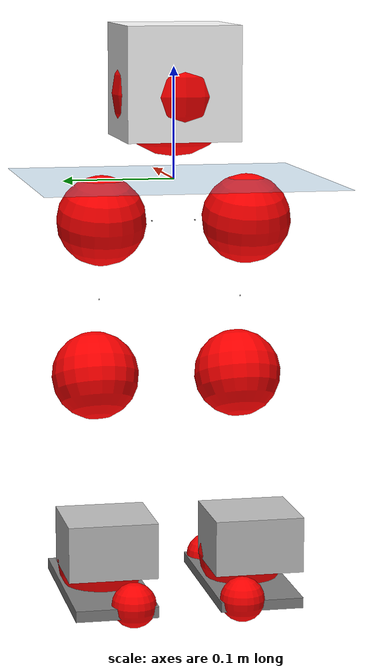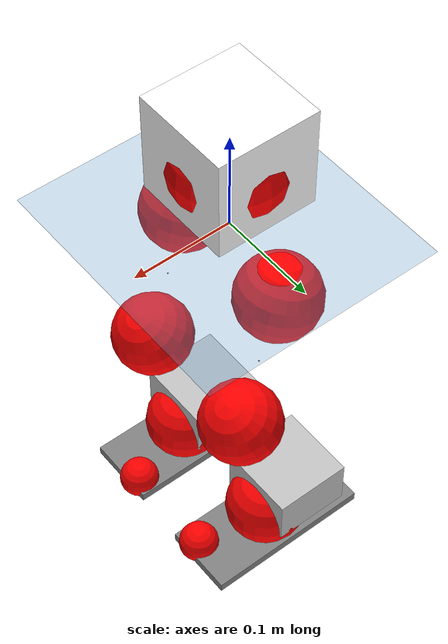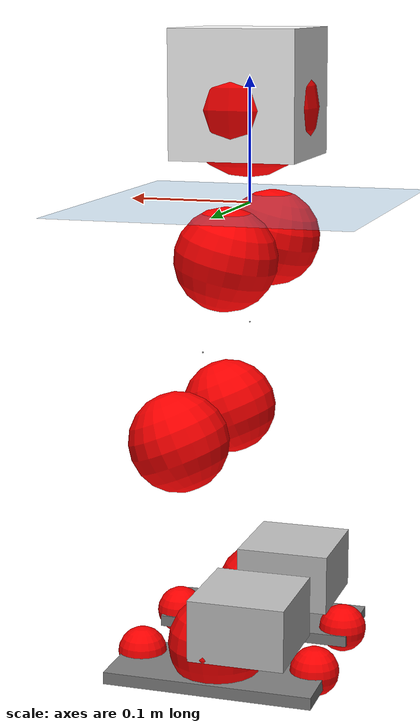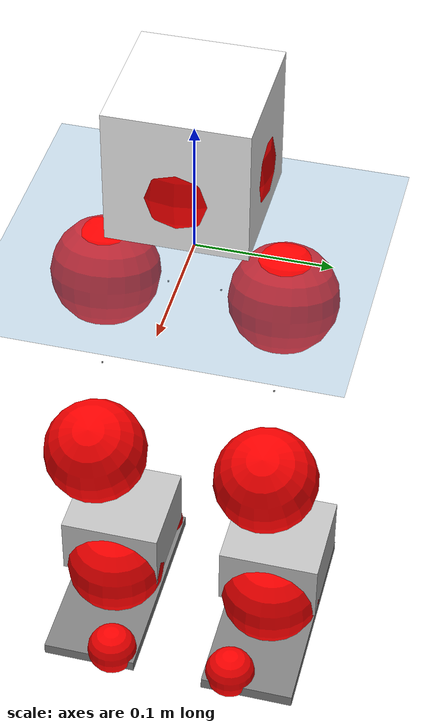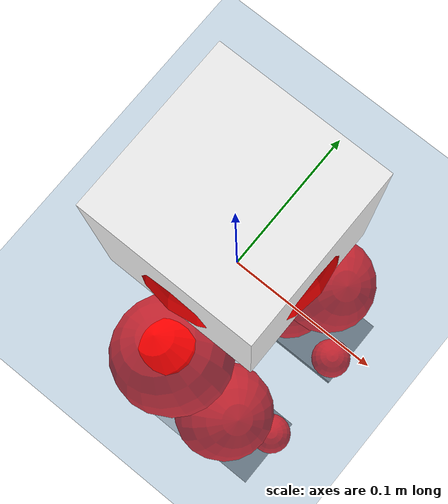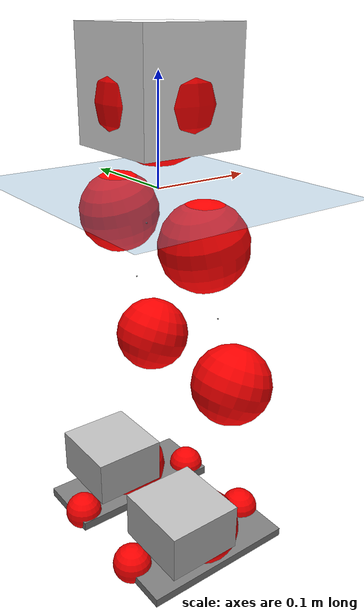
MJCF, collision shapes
<mujoco model="pi_12dof_release_v1">
  <compiler angle="radian" assetdir="assets" balanceinertia="true" inertiafromgeom="false"/>

  <option timestep="0.005" density="1.2" viscosity="2e-05"/>

  <size nkey="1"/>

  <visual>
    <quality shadowsize="8192"/>
    <map shadowclip="0.5"/>
  </visual>

  <default>
    <default class="/">
      <joint armature="0.01" damping="0.01" frictionloss="0.01"/>
      <geom contype="0" conaffinity="0" group="1" solref="-1000 -80"/>
      <site size="0.01 0.005 0.005" group="5"/>
      <general forcelimited="true" biastype="affine" gainprm="20" biasprm="0 -20 -0.5"/>
      <default class="foot">
        <geom size="0.0845 0.036 0.005" type="box" condim="6" group="4" priority="1" friction="0.9 0.2 0.2" solimp="0.015 1 0.005"/>
      </default>
      <default class="reward_collision_sphere">
        <geom group="5" rgba="1 0 0 1"/>
      </default>
    </default>
  </default>

  <asset>
    <texture type="skybox" colorspace="auto" name="//unnamed_texture_0" builtin="gradient" rgb1="0.95 0.95 0.95" rgb2="0.95 0.95 0.95" width="100" height="600"/>
    <texture type="2d" colorspace="auto" name="texplane" builtin="checker" rgb1="0.345 0.575 0.748" rgb2="0.345 0.575 0.748" markrgb="1 1 1" width="512" height="512"/>
    <material name="MatPlane" class="/" texture="texplane" texuniform="true" texrepeat="2 2" specular="0.9"/>
    <mesh name="baselink_1" class="/" file="baselink_1.STL"/>
    <mesh name="r_hip_pitch_link" class="/" file="r_hip_pitch_link.STL"/>
    <mesh name="r_hip_roll_link" class="/" file="r_hip_roll_link.STL"/>
    <mesh name="r_thigh_link" class="/" file="r_thigh_link.STL"/>
    <mesh name="r_calf_link" class="/" file="r_calf_link.STL"/>
    <mesh name="r_ankle_pitch_link" class="/" file="r_ankle_pitch_link.STL"/>
    <mesh name="r_ankle_roll_link" class="/" file="r_ankle_roll_link.STL"/>
    <mesh name="l_hip_pitch_link" class="/" file="l_hip_pitch_link.STL"/>
    <mesh name="l_hip_roll_link" class="/" file="l_hip_roll_link.STL"/>
    <mesh name="l_thigh_link" class="/" file="l_thigh_link.STL"/>
    <mesh name="l_calf_link" class="/" file="l_calf_link.STL"/>
    <mesh name="l_ankle_pitch_link" class="/" file="l_ankle_pitch_link.STL"/>
    <mesh name="l_ankle_roll_link" class="/" file="l_ankle_roll_link.STL"/>
  </asset>

  <worldbody>
    <geom name="floor" class="/" size="100 100 0.125" type="plane" group="0" material="MatPlane"/>
    <light name="toplight_shadow" class="/" pos="0 0 5" dir="0.0990148 0.0990148 -0.990148" type="directional" ambient="0.04 0.04 0.04" diffuse="0.55 0.55 0.55" specular="0.12 0.12 0.12"/>
    <light name="toplight_fill" class="/" pos="0 0 5" dir="0.0990148 0.0990148 -0.990148" type="directional" castshadow="false" ambient="0.04 0.04 0.04" diffuse="0.3 0.3 0.3" specular="0.08 0.08 0.08"/>
    <body name="trunk" pos="0.000469628 0.000207984 -0.00135928" quat="1 0.000439431 -5.22653e-05 0.000206263">
      <inertial pos="0.00321894 -0.000718127 0.0441871" quat="0.693296 0.00926779 0.00647583 0.720564" mass="2.27733" diaginertia="0.0154934 0.00364863 0.00694505"/>
      <joint name="//unnamed_joint_0" type="free"/>
      <geom name="//unnamed_geom_1" class="/" type="mesh" density="0" rgba="1 1 1 1" mesh="baselink_1"/>
      <geom name="//unnamed_geom_2" class="/" size="0.0504947 0.0504947 0.0504947" pos="0 0 0.0883509" type="box" rgba="1 1 1 1"/>
      <geom name="//unnamed_geom_3" class="reward_collision_sphere" size="0.0555442" pos="0 0 0.077307"/>
      <site name="imu" class="/" pos="0.00209953 -0.00428504 0.000194118" size="0.0100989"/>
      <camera name="track" class="/" pos="0 -1.66418 0" quat="0.707107 0.707107 0 0" mode="trackcom"/>
      <camera name="ego_camera" class="/" pos="0.0819904 0 0.198789" quat="-0.5 -0.5 0.5 0.5"/>
      <body name="r_hip_pitch_link" pos="0.000102595 -0.0195049 -0.0359752" quat="0.992196 -7.64305e-06 -0.12469 1.02299e-05">
        <inertial pos="0.000701736 -0.0462439 -0.000801627" quat="-0.0206423 0.704654 -0.0225413 0.708892" mass="0.385007" diaginertia="0.000170754 3.96553e-05 0.000138038"/>
        <joint name="r_hip_pitch_joint" class="/" pos="0 0 0" axis="-0.000436159 -0.999999 0.00165635" stiffness="4.46581e-05" range="-1.74447 1.2518" armature="0.0102168" damping="0.0143265" frictionloss="0.0103583"/>
        <geom name="//unnamed_geom_4" class="/" type="mesh" density="0" rgba="0.75294 0.75294 0.75294 1" mesh="r_hip_pitch_link"/>
        <geom name="//unnamed_geom_5" class="/" size="0.000504947 0.000504947 0.000504947" type="box" rgba="0.75294 0.75294 0.75294 1"/>
        <body name="r_hip_roll_link" pos="-0.00049289 -0.0470525 0.000483053" quat="1 0.000135817 -8.21517e-05 -0.000147021">
          <inertial pos="-0.000773651 -0.000150809 -0.067683" quat="0.706122 -0.0772963 -0.0834813 0.69889" mass="0.398473" diaginertia="0.000520712 0.000110255 0.000209339"/>
          <joint name="r_hip_roll_joint" class="/" pos="0 0 0" axis="-0.999998 -0.0018491 0.000535541" range="-0.123657 0.498568" armature="0.00928668" damping="0.0092116" frictionloss="0.00969597"/>
          <geom name="//unnamed_geom_6" class="/" type="mesh" density="0" rgba="0.75294 0.75294 0.75294 1" mesh="r_hip_roll_link"/>
          <geom name="//unnamed_geom_7" class="/" size="0.000504947 0.000504947 0.000504947" type="box" rgba="0.75294 0.75294 0.75294 1"/>
          <geom name="//unnamed_geom_8" class="reward_collision_sphere" size="0.0403958"/>
          <body name="r_thigh_link" pos="0.000759583 0.000522736 -0.0760842" quat="1 -0.000111034 -0.000228301 5.44167e-05">
            <inertial pos="-0.00121692 -0.000303426 -0.0521004" quat="0.736683 0.676237 0.000700175 -0.000757511" mass="0.116817" diaginertia="0.000193762 3.80422e-05 9.52811e-05"/>
            <joint name="r_thigh_joint" class="/" pos="0 0 0" axis="1.58915e-05 2.73522e-05 -1" range="-0.282548 0.598519" armature="0.00938805" damping="0.0022143" frictionloss="0.0098463"/>
            <geom name="//unnamed_geom_9" class="/" type="mesh" density="0" rgba="0.75294 0.75294 0.75294 1" mesh="r_thigh_link"/>
            <geom name="//unnamed_geom_10" class="/" size="0.000504947 0.000504947 0.000504947" type="box" rgba="0.75294 0.75294 0.75294 1"/>
            <body name="r_calf_link" pos="-0.000252165 -0.00221193 -0.0781118" quat="0.947876 -0.000327766 0.318639 -0.000127603">
              <inertial pos="0.000649019 -0.000813928 -0.0768059" quat="0.999954 0.0024245 0.000284093 0.00928631" mass="0.857066" diaginertia="0.00555608 0.00140589 0.000289921"/>
              <joint name="r_calf_joint" class="/" pos="0 0 0" axis="-0.00032619 -0.999997 -0.00243196" range="-1.65436 0.629264" armature="0.0101387" damping="0.00678801" frictionloss="0.0101892"/>
              <geom name="//unnamed_geom_11" class="/" type="mesh" density="0" rgba="0.75294 0.75294 0.75294 1" mesh="r_calf_link"/>
              <geom name="//unnamed_geom_12" class="/" size="0.000504947 0.000504947 0.000504947" type="box" rgba="0.75294 0.75294 0.75294 1"/>
              <geom name="//unnamed_geom_13" class="reward_collision_sphere" size="0.0403958"/>
              <body name="r_ankle_pitch_link" pos="-0.000108526 0.000817648 -0.152944" quat="0.980027 0.000143575 -0.198866 -0.000274428">
                <inertial pos="0.0062315 0.00320604 0.000330076" quat="0.00282382 0.70698 -0.00160089 0.707226" mass="0.180956" diaginertia="0.000478478 8.83295e-05 0.000194594"/>
                <joint name="r_ankle_pitch_joint" class="/" pos="0 0 0" axis="0.00497215 -0.999986 -0.00201685" stiffness="0.000284118" range="-1.27945 0.501201" armature="0.0104805" damping="0.0176331" frictionloss="0.010361"/>
                <geom name="//unnamed_geom_14" class="/" type="mesh" density="0" rgba="0.75294 0.75294 0.75294 1" mesh="r_ankle_pitch_link"/>
                <geom name="//unnamed_geom_15" class="/" size="0.0393859 0.0403958 0.0252474" type="box" rgba="0.75294 0.75294 0.75294 1"/>
                <body name="r_ankle_roll_link" pos="0.0822001 0.00169272 9.12625e-05" quat="1 2.82549e-05 0.00011496 1.18147e-06">
                  <inertial pos="-0.0256111 -0.000677391 -0.0161818" quat="0.560113 0.432848 0.427281 0.562447" mass="0.524878" diaginertia="0.00175011 0.000409723 0.000464329"/>
                  <joint name="r_ankle_roll_joint" class="/" pos="0 0 0" axis="-1 6.05242e-05 1.17572e-05" range="-0.183656 0.13474" armature="0.00983677" damping="0.0129668" frictionloss="0.00958047"/>
                  <geom name="//unnamed_geom_16" class="/" type="mesh" density="0" rgba="0.75294 0.75294 0.75294 1" mesh="r_ankle_roll_link"/>
                  <geom name="//unnamed_geom_17" class="/" type="mesh" rgba="0.75294 0.75294 0.75294 1" mesh="r_ankle_roll_link"/>
                  <geom name="right_foot" class="foot" size="0.0832589 0.0376125 0.00468542" pos="-0.0557534 0 -0.048593"/>
                  <geom name="//unnamed_geom_19" class="reward_collision_sphere" size="0.0403958" pos="-0.0546602 0 -0.0220877"/>
                  <geom name="//unnamed_geom_20" class="reward_collision_sphere" size="0.0201979" pos="0.0163981 0.0166418 -0.0441754"/>
                  <geom name="//unnamed_geom_21" class="reward_collision_sphere" size="0.0201979" pos="-0.131185 0.0166418 -0.0441754"/>
                  <site name="right_foot" class="foot" pos="-0.0557534 0 -0.048593" size="0.0100989"/>
                </body>
              </body>
            </body>
          </body>
        </body>
      </body>
      <body name="l_hip_pitch_link" pos="-4.52468e-05 0.0197583 -0.0359747" quat="0.992207 -9.75969e-05 -0.124599 1.86699e-05">
        <inertial pos="0.00188017 0.0437886 -0.00183312" quat="-0.0391948 0.703452 0.0321032 0.708935" mass="0.403862" diaginertia="0.000204997 4.19491e-05 0.000167468"/>
        <joint name="l_hip_pitch_joint" class="/" pos="0 0 0" axis="-0.00143591 0.999994 0.00318758" range="-1.27252 1.77134" armature="0.0101348" damping="0.00253494" frictionloss="0.00962125"/>
        <geom name="//unnamed_geom_22" class="/" type="mesh" density="0" rgba="0.75294 0.75294 0.75294 1" mesh="l_hip_pitch_link"/>
        <geom name="//unnamed_geom_23" class="/" size="0.000504947 0.000504947 0.000504947" type="box" rgba="0.75294 0.75294 0.75294 1"/>
        <body name="l_hip_roll_link" pos="-0.000753185 0.0459443 0.00154422" quat="1 -0.000138242 -0.000149637 1.11248e-06">
          <inertial pos="0.000311914 0.000126923 -0.0692368" quat="0.699283 -0.0752986 -0.0782197 0.706552" mass="0.410239" diaginertia="0.000538231 0.000113884 0.000214378"/>
          <joint name="l_hip_roll_joint" class="/" pos="0 0 0" axis="-1 -0.00026734 0.000756201" range="-0.501934 0.134058" armature="0.0102252" damping="0.00183277" frictionloss="0.0100734"/>
          <geom name="//unnamed_geom_24" class="/" type="mesh" density="0" rgba="0.75294 0.75294 0.75294 1" mesh="l_hip_roll_link"/>
          <geom name="//unnamed_geom_25" class="/" size="0.000504947 0.000504947 0.000504947" type="box" rgba="0.75294 0.75294 0.75294 1"/>
          <geom name="//unnamed_geom_26" class="reward_collision_sphere" size="0.0403958"/>
          <body name="l_thigh_link" pos="0.000288637 -0.000701479 -0.0764858" quat="1 -2.19791e-05 2.67315e-05 4.39875e-05">
            <inertial pos="-0.000778957 -0.00220549 -0.0542565" quat="0.678231 0.734848 0.000730118 -0.000464812" mass="0.116303" diaginertia="0.000195726 3.84007e-05 9.4559e-05"/>
            <joint name="l_thigh_joint" class="/" pos="0 0 0" axis="-0.000295957 -0.000308185 -1" range="-0.594022 0.285346" armature="0.00997332" damping="0.0112328" frictionloss="0.0108532"/>
            <geom name="//unnamed_geom_27" class="/" type="mesh" density="0" rgba="0.75294 0.75294 0.75294 1" mesh="l_thigh_link"/>
            <geom name="//unnamed_geom_28" class="/" size="0.000504947 0.000504947 0.000504947" type="box" rgba="0.75294 0.75294 0.75294 1"/>
            <body name="l_calf_link" pos="0.00131621 0.000575816 -0.0766317" quat="0.947644 4.27356e-05 0.319328 2.46588e-05">
              <inertial pos="0.000591709 0.0034189 -0.076903" quat="0.99998 0.00116168 -0.00400971 0.00468699" mass="0.833711" diaginertia="0.00566785 0.00141572 0.0002882"/>
              <joint name="l_calf_joint" class="/" pos="0 0 0" axis="-0.00445437 0.999989 -0.00150473" range="-0.660365 1.67114" armature="0.0101247" damping="0.0106971" frictionloss="0.00975989"/>
              <geom name="//unnamed_geom_29" class="/" type="mesh" density="0" rgba="0.75294 0.75294 0.75294 1" mesh="l_calf_link"/>
              <geom name="//unnamed_geom_30" class="/" size="0.000504947 0.000504947 0.000504947" type="box" rgba="0.75294 0.75294 0.75294 1"/>
              <geom name="//unnamed_geom_31" class="reward_collision_sphere" size="0.0403958"/>
              <body name="l_ankle_pitch_link" pos="0.00122237 0.000278898 -0.153751" quat="0.980021 0.000138423 -0.198892 0.000179161">
                <inertial pos="0.00436415 0.0001106 -0.00114863" quat="3.25443e-05 0.708253 0.000898789 0.705958" mass="0.178499" diaginertia="0.000485359 8.87436e-05 0.00019814"/>
                <joint name="l_ankle_pitch_joint" class="/" pos="0 0 0" axis="0.00189028 0.999998 0.00065453" range="-0.493882 1.30375" armature="0.0105808" damping="0" frictionloss="0.0100901"/>
                <geom name="//unnamed_geom_32" class="/" type="mesh" density="0" rgba="0.75294 0.75294 0.75294 1" mesh="l_ankle_pitch_link"/>
                <geom name="//unnamed_geom_33" class="/" size="0.0393859 0.0403958 0.0252474" type="box" rgba="0.75294 0.75294 0.75294 1"/>
                <body name="l_ankle_roll_link" pos="0.0811542 0.0004437 -0.000833562" quat="1 -0.000724457 -0.000317603 -0.000237561">
                  <inertial pos="-0.0267629 -0.000464595 -0.0157152" quat="0.562305 0.42841 0.431703 0.560277" mass="0.526235" diaginertia="0.00173812 0.000402458 0.000454967"/>
                  <joint name="l_ankle_roll_joint" class="/" pos="0 0 0" axis="-1 5.45047e-05 7.06052e-05" range="-0.144411 0.118996" armature="0.00998046" damping="0.00853579" frictionloss="0.0105842"/>
                  <geom name="//unnamed_geom_34" class="/" type="mesh" density="0" rgba="0.75294 0.75294 0.75294 1" mesh="l_ankle_roll_link"/>
                  <geom name="//unnamed_geom_35" class="/" type="mesh" rgba="0.75294 0.75294 0.75294 1" mesh="l_ankle_roll_link"/>
                  <geom name="left_foot" class="foot" size="0.0862368 0.0372193 0.00501618" pos="-0.0557534 0 -0.048593"/>
                  <geom name="//unnamed_geom_37" class="reward_collision_sphere" size="0.0403958" pos="-0.0546602 0 -0.0220877"/>
                  <geom name="//unnamed_geom_38" class="reward_collision_sphere" size="0.0201979" pos="0.0163981 -0.0166418 -0.0441754"/>
                  <geom name="//unnamed_geom_39" class="reward_collision_sphere" size="0.0201979" pos="-0.131185 -0.0166418 -0.0441754"/>
                  <site name="left_foot" class="foot" pos="-0.0557534 0 -0.048593" size="0.0100989"/>
                </body>
              </body>
            </body>
          </body>
        </body>
      </body>
    </body>
  </worldbody>

  <contact>
    <pair class="/" geom1="floor" geom2="right_foot" name="//unnamed_contact_1"/>
    <pair class="/" geom1="floor" geom2="left_foot" name="//unnamed_contact_0"/>
  </contact>

  <actuator>
    <general name="r_hip_pitch_joint" class="/" joint="r_hip_pitch_joint" forcerange="-21.6414 21.6414" gainprm="19.4163" biasprm="0 -19.4163 -0.499805"/>
    <general name="r_hip_roll_joint" class="/" joint="r_hip_roll_joint" forcerange="-19.9807 19.9807" gainprm="19.4163" biasprm="0 -19.4163 -0.499805"/>
    <general name="r_thigh_joint" class="/" joint="r_thigh_joint" forcerange="-21.0816 21.0816" gainprm="19.4163" biasprm="0 -19.4163 -0.499805"/>
    <general name="r_calf_joint" class="/" joint="r_calf_joint" forcerange="-22.5317 22.5317" gainprm="19.4163" biasprm="0 -19.4163 -0.499805"/>
    <general name="r_ankle_pitch_joint" class="/" joint="r_ankle_pitch_joint" forcerange="-21.9215 21.9215" gainprm="19.4163" biasprm="0 -19.4163 -0.499805"/>
    <general name="r_ankle_roll_joint" class="/" joint="r_ankle_roll_joint" forcerange="-19.9651 19.9651" gainprm="19.4163" biasprm="0 -19.4163 -0.499805"/>
    <general name="l_hip_pitch_joint" class="/" joint="l_hip_pitch_joint" forcerange="-21.1392 21.1392" gainprm="19.4163" biasprm="0 -19.4163 -0.499805"/>
    <general name="l_hip_roll_joint" class="/" joint="l_hip_roll_joint" forcerange="-21.5855 21.5855" gainprm="19.4163" biasprm="0 -19.4163 -0.499805"/>
    <general name="l_thigh_joint" class="/" joint="l_thigh_joint" forcerange="-20.4951 20.4951" gainprm="19.4163" biasprm="0 -19.4163 -0.499805"/>
    <general name="l_calf_joint" class="/" joint="l_calf_joint" forcerange="-20.7936 20.7936" gainprm="19.4163" biasprm="0 -19.4163 -0.499805"/>
    <general name="l_ankle_pitch_joint" class="/" joint="l_ankle_pitch_joint" forcerange="-20.454 20.454" gainprm="19.4163" biasprm="0 -19.4163 -0.499805"/>
    <general name="l_ankle_roll_joint" class="/" joint="l_ankle_roll_joint" forcerange="-21.0938 21.0938" gainprm="19.4163" biasprm="0 -19.4163 -0.499805"/>
  </actuator>

  <sensor>
    <gyro site="imu" name="imu_angular_velocity"/>
    <velocimeter site="imu" name="imu_linear_velocity"/>
    <framelinvel objtype="site" objname="left_foot" name="left_foot_global_linear_velocity"/>
    <framelinvel objtype="site" objname="right_foot" name="right_foot_global_linear_velocity"/>
  </sensor>

  <keyframe>
    <key name="home" qpos="0 0 0.291 1 0 0 0 0.4 0 0 -0.8 0.4 0 -0.4 0 0 0.8 -0.4 0"/>
  </keyframe>
</mujoco>
